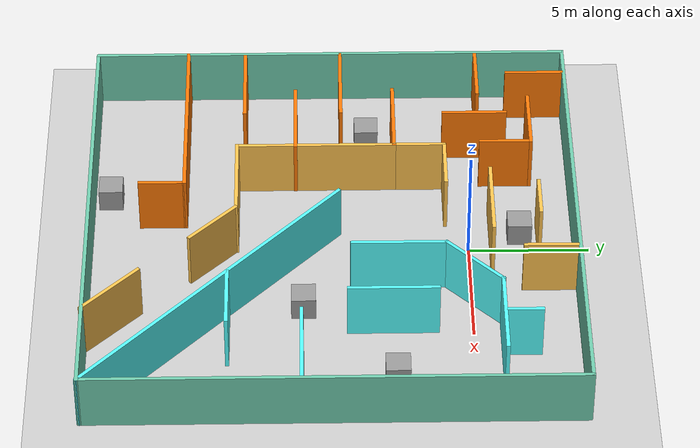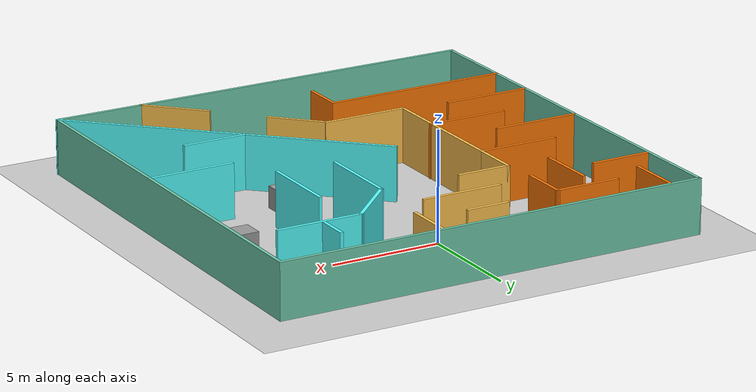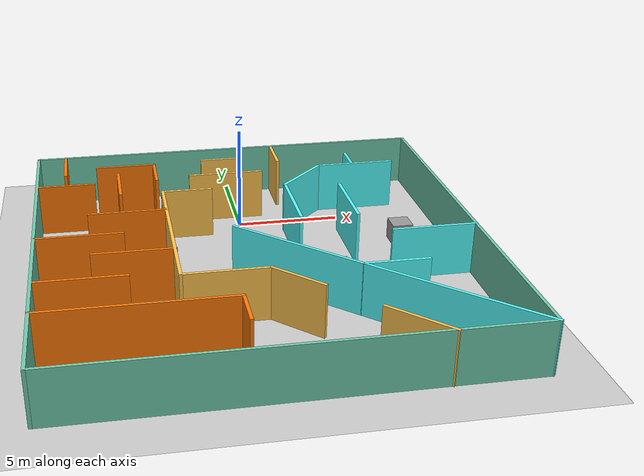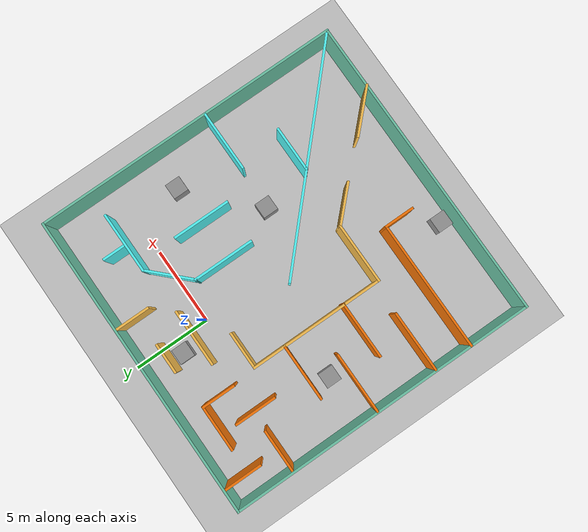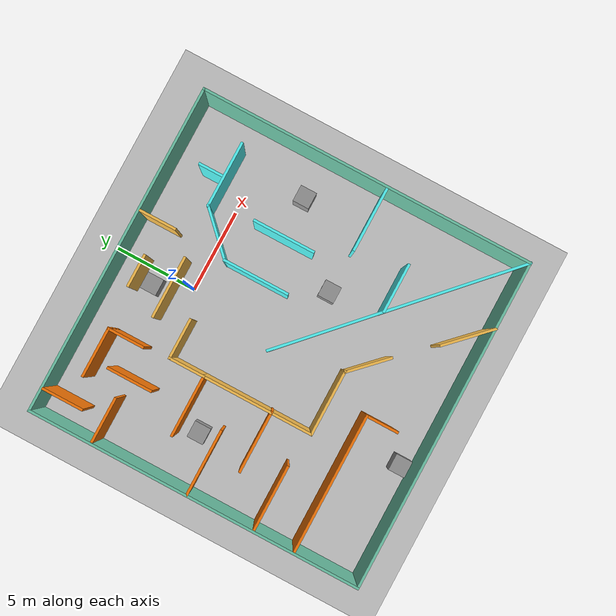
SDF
<sdf version="1.7">
 <world name="default">
  <plugin name="ros_interface_plugin" filename="librotors_gazebo_ros_interface_plugin.so"/>
  <physics type="ode">
   <ode>
    <solver>
     <type>quick</type>
     <iters>1000</iters>
     <sor>1.3</sor>
     <use_dynamic_moi_rescaling>0</use_dynamic_moi_rescaling>
    </solver>
    <constraints>
     <cfm>0</cfm>
     <erp>0.2</erp>
     <contact_max_correcting_vel>100</contact_max_correcting_vel>
     <contact_surface_layer>0.001</contact_surface_layer>
    </constraints>
   </ode>
   <max_step_size>0.01</max_step_size>
   <real_time_factor>1</real_time_factor>
   <real_time_update_rate>100</real_time_update_rate>
   <gravity>0 0 -9.8</gravity>
  </physics>
  <light name="sun" type="directional">
   <pose>0 0 10 0 -0 0</pose>
   <diffuse>0.8 0.8 0.8 1</diffuse>
   <specular>0.1 0.1 0.1 1</specular>
   <attenuation>
    <range>1000</range>
    <constant>0.9</constant>
    <linear>0.01</linear>
    <quadratic>0.001</quadratic>
   </attenuation>
   <direction>-0.5 0.5 -1</direction>
   <spot><inner_angle>0</inner_angle><outer_angle>0</outer_angle><falloff>0</falloff></spot>
  </light>
  <model name="ground_plane">
   <static>1</static>
   <link name="link">
    <collision name="collision">
     <geometry><plane><normal>0 0 1</normal><size>100 100</size></plane></geometry>
     <surface><friction><ode><mu>100</mu><mu2>50</mu2></ode></friction></surface>
    </collision>
    <visual name="visual">
     <cast_shadows>0</cast_shadows>
     <geometry><plane><normal>0 0 1</normal><size>100 100</size></plane></geometry>
     <material>
      <script><uri>file://media/materials/scripts/gazebo.material</uri><name>Gazebo/Grey</name></script>
     </material>
    </visual>
   </link>
  </model>
  <gravity>0 0 -9.8</gravity>
  <magnetic_field>6e-06 2.3e-05 -4.2e-05</magnetic_field>
  <atmosphere type="adiabatic"/>
  <scene><ambient>0.4 0.4 0.4 1</ambient><background>0.7 0.7 0.7 1</background><shadows>1</shadows></scene>
  <spherical_coordinates>
   <surface_model>EARTH_WGS84</surface_model>
   <latitude_deg>0</latitude_deg>
   <longitude_deg>0</longitude_deg>
   <elevation>0</elevation>
   <heading_deg>0</heading_deg>
  </spherical_coordinates>
  <model name="Maze_House">
   <pose>-0.08365 -5.67478 0 0 -0 0</pose>
   <link name="Wall_11">
    <collision name="Wall_11_Collision">
     <geometry><box><size>3.05 0.15 2.5</size></box></geometry>
     <pose>0 0 1.25 0 -0 0</pose>
    </collision>
    <visual name="Wall_11_Visual">
     <pose>0 0 1.25 0 -0 0</pose>
     <geometry><box><size>3.05 0.15 2.5</size></box></geometry>
     <material>
      <script><uri>file://media/materials/scripts/gazebo.material</uri><name>Gazebo/Grey</name></script>
      <ambient>0.996078 0.47451 0.0196078 1</ambient>
     </material>
    </visual>
    <pose>-5.47185 8.41758 0 0 -0 0</pose>
   </link>
   <link name="Wall_12">
    <collision name="Wall_12_Collision">
     <geometry><box><size>2.25 0.15 2.5</size></box></geometry>
     <pose>0 0 1.25 0 -0 0</pose>
    </collision>
    <visual name="Wall_12_Visual">
     <pose>0 0 1.25 0 -0 0</pose>
     <geometry><box><size>2.25 0.15 2.5</size></box></geometry>
     <material>
      <script><uri>file://media/materials/scripts/gazebo.material</uri><name>Gazebo/Grey</name></script>
      <ambient>0.996078 0.47451 0.0196078 1</ambient>
     </material>
    </visual>
    <pose>-4.03185 7.36758 0 0 0 -1.5708</pose>
   </link>
   <link name="Wall_14">
    <collision name="Wall_14_Collision">
     <geometry><box><size>2.75 0.15 2.5</size></box></geometry>
     <pose>0 0 1.25 0 -0 0</pose>
    </collision>
    <visual name="Wall_14_Visual">
     <pose>0 0 1.25 0 -0 0</pose>
     <geometry><box><size>2.75 0.15 2.5</size></box></geometry>
     <material>
      <script><uri>file://media/materials/scripts/gazebo.material</uri><name>Gazebo/Grey</name></script>
      <ambient>0.996078 0.47451 0.0196078 1</ambient>
     </material>
    </visual>
    <pose>-5.91104 6.10678 0 0 0 -1.5708</pose>
   </link>
   <link name="Wall_16">
    <collision name="Wall_16_Collision">
     <geometry><box><size>2.75 0.15 2.5</size></box></geometry>
     <pose>0 0 1.25 0 -0 0</pose>
    </collision>
    <visual name="Wall_16_Visual">
     <pose>0 0 1.25 0 -0 0</pose>
     <geometry><box><size>2.75 0.15 2.5</size></box></geometry>
     <material>
      <script><uri>file://media/materials/scripts/gazebo.material</uri><name>Gazebo/Grey</name></script>
      <ambient>0.996078 0.47451 0.0196078 1</ambient>
     </material>
    </visual>
    <pose>-8.48785 6.28957 0 0 -0 3.14159</pose>
   </link>
   <link name="Wall_18">
    <collision name="Wall_18_Collision">
     <geometry><box><size>2.5 0.15 2.5</size></box></geometry>
     <pose>0 0 1.25 0 -0 0</pose>
    </collision>
    <visual name="Wall_18_Visual">
     <pose>0 0 1.25 0 -0 0</pose>
     <geometry><box><size>2.5 0.15 2.5</size></box></geometry>
     <material>
      <script><uri>file://media/materials/scripts/gazebo.material</uri><name>Gazebo/Grey</name></script>
      <ambient>0.996078 0.47451 0.0196078 1</ambient>
     </material>
    </visual>
    <pose>-8.54446 8.78539 0 0 0 -1.5708</pose>
   </link>
   <link name="Wall_20">
    <collision name="Wall_20_Collision">
     <geometry><box><size>2.5 0.15 2.5</size></box></geometry>
     <pose>0 0 1.25 0 -0 0</pose>
    </collision>
    <visual name="Wall_20_Visual">
     <pose>0 0 1.25 0 -0 0</pose>
     <geometry><box><size>2.5 0.15 2.5</size></box></geometry>
     <material>
      <script><uri>file://media/materials/scripts/gazebo.material</uri><name>Gazebo/Grey</name></script>
      <ambient>1 0.764706 0.305882 1</ambient>
     </material>
    </visual>
    <pose>-2.69303 4.75396 0 0 -0 0</pose>
   </link>
   <link name="Wall_22">
    <collision name="Wall_22_Collision">
     <geometry><box><size>3.75 0.15 2.5</size></box></geometry>
     <pose>0 0 1.25 0 -0 0</pose>
    </collision>
    <visual name="Wall_22_Visual">
     <pose>0 0 1.25 0 -0 0</pose>
     <geometry><box><size>3.75 0.15 2.5</size></box></geometry>
     <material>
      <script><uri>file://media/materials/scripts/gazebo.material</uri><name>Gazebo/Grey</name></script>
      <ambient>1 0.764706 0.305882 1</ambient>
     </material>
    </visual>
    <pose>-0.505302 6.6178 0 0 -0 0</pose>
   </link>
   <link name="Wall_24">
    <collision name="Wall_24_Collision">
     <geometry><box><size>4 0.15 2.5</size></box></geometry>
     <pose>0 0 1.25 0 -0 0</pose>
    </collision>
    <visual name="Wall_24_Visual">
     <pose>0 0 1.25 0 -0 0</pose>
     <geometry><box><size>4 0.15 2.5</size></box></geometry>
     <material>
      <script><uri>file://media/materials/scripts/gazebo.material</uri><name>Gazebo/Grey</name></script>
      <ambient>0.333333 1 1 1</ambient>
     </material>
    </visual>
    <pose>2.20732 2.72875 0 0 0 -1.5708</pose>
   </link>
   <link name="Wall_27">
    <collision name="Wall_27_Collision">
     <geometry><box><size>2 0.15 2.5</size></box></geometry>
     <pose>0 0 1.25 0 -0 0</pose>
    </collision>
    <visual name="Wall_27_Visual">
     <pose>0 0 1.25 0 -0 0</pose>
     <geometry><box><size>2 0.15 2.5</size></box></geometry>
     <material>
      <script><uri>file://media/materials/scripts/gazebo.material</uri><name>Gazebo/Grey</name></script>
      <ambient>1 0.764706 0.305882 1</ambient>
     </material>
    </visual>
    <pose>-0.54846 8.59601 0 0 -0 0</pose>
   </link>
   <link name="Wall_29">
    <collision name="Wall_29_Collision">
     <geometry><box><size>2.25 0.15 2.5</size></box></geometry>
     <pose>0 0 1.25 0 -0 0</pose>
    </collision>
    <visual name="Wall_29_Visual">
     <pose>0 0 1.25 0 -0 0</pose>
     <geometry><box><size>2.25 0.15 2.5</size></box></geometry>
     <material>
      <script><uri>file://media/materials/scripts/gazebo.material</uri><name>Gazebo/Grey</name></script>
      <ambient>1 0.764706 0.305882 1</ambient>
     </material>
    </visual>
    <pose>2.42857 8.89362 0 0 0 -1.5708</pose>
   </link>
   <link name="Wall_31">
    <collision name="Wall_31_Collision">
     <geometry><box><size>3.25 0.15 2.5</size></box></geometry>
     <pose>0 0 1.25 0 -0 0</pose>
    </collision>
    <visual name="Wall_31_Visual">
     <pose>0 0 1.25 0 -0 0</pose>
     <geometry><box><size>3.25 0.15 2.5</size></box></geometry>
     <material>
      <script><uri>file://media/materials/scripts/gazebo.material</uri><name>Gazebo/Grey</name></script>
      <ambient>0.333333 1 1 1</ambient>
     </material>
    </visual>
    <pose>3.30334 5.74977 0 0 -0 0.785398</pose>
   </link>
   <link name="Wall_32">
    <collision name="Wall_32_Collision">
     <geometry><box><size>4 0.15 2.5</size></box></geometry>
     <pose>0 0 1.25 0 -0 0</pose>
    </collision>
    <visual name="Wall_32_Visual">
     <pose>0 0 1.25 0 -0 0</pose>
     <geometry><box><size>4 0.15 2.5</size></box></geometry>
     <material>
      <script><uri>file://media/materials/scripts/gazebo.material</uri><name>Gazebo/Grey</name></script>
      <ambient>0.333333 1 1 1</ambient>
     </material>
    </visual>
    <pose>6.32435 6.84578 0 0 -0 0</pose>
   </link>
   <link name="Wall_34">
    <collision name="Wall_34_Collision">
     <geometry><box><size>3.75 0.15 2.5</size></box></geometry>
     <pose>0 0 1.25 0 -0 0</pose>
    </collision>
    <visual name="Wall_34_Visual">
     <pose>0 0 1.25 0 -0 0</pose>
     <geometry><box><size>3.75 0.15 2.5</size></box></geometry>
     <material>
      <script><uri>file://media/materials/scripts/gazebo.material</uri><name>Gazebo/Grey</name></script>
      <ambient>0.333333 1 1 1</ambient>
     </material>
    </visual>
    <pose>4.88243 2.43137 0 0 0 -1.5708</pose>
   </link>
   <link name="Wall_36">
    <collision name="Wall_36_Collision">
     <geometry><box><size>1.5 0.15 2.5</size></box></geometry>
     <pose>0 0 1.25 0 -0 0</pose>
    </collision>
    <visual name="Wall_36_Visual">
     <pose>0 0 1.25 0 -0 0</pose>
     <geometry><box><size>1.5 0.15 2.5</size></box></geometry>
     <material>
      <script><uri>file://media/materials/scripts/gazebo.material</uri><name>Gazebo/Grey</name></script>
      <ambient>0.333333 1 1 1</ambient>
     </material>
    </visual>
    <pose>6.18981 7.64181 0 0 -0 1.5708</pose>
   </link>
   <link name="Wall_39">
    <collision name="Wall_39_Collision">
     <geometry><box><size>2.25 0.15 2.5</size></box></geometry>
     <pose>0 0 1.25 0 -0 0</pose>
    </collision>
    <visual name="Wall_39_Visual">
     <pose>0 0 1.25 0 -0 0</pose>
     <geometry><box><size>2.25 0.15 2.5</size></box></geometry>
     <material>
      <script><uri>file://media/materials/scripts/gazebo.material</uri><name>Gazebo/Grey</name></script>
      <ambient>1 0.764706 0.305882 1</ambient>
     </material>
    </visual>
    <pose>-3.86803 3.70396 0 0 0 -1.5708</pose>
   </link>
   <link name="Wall_40">
    <collision name="Wall_40_Collision">
     <geometry><box><size>3.75 0.15 2.5</size></box></geometry>
     <pose>0 0 1.25 0 -0 0</pose>
    </collision>
    <visual name="Wall_40_Visual">
     <pose>0 0 1.25 0 -0 0</pose>
     <geometry><box><size>3.75 0.15 2.5</size></box></geometry>
     <material>
      <script><uri>file://media/materials/scripts/gazebo.material</uri><name>Gazebo/Grey</name></script>
      <ambient>0.996078 0.47451 0.0196078 1</ambient>
     </material>
    </visual>
    <pose>-5.66803 2.65396 0 0 -0 3.14159</pose>
   </link>
   <link name="Wall_42">
    <collision name="Wall_42_Collision">
     <geometry><box><size>4 0.15 2.5</size></box></geometry>
     <pose>0 0 1.25 0 -0 0</pose>
    </collision>
    <visual name="Wall_42_Visual">
     <pose>0 0 1.25 0 -0 0</pose>
     <geometry><box><size>4 0.15 2.5</size></box></geometry>
     <material>
      <script><uri>file://media/materials/scripts/gazebo.material</uri><name>Gazebo/Grey</name></script>
      <ambient>0.996078 0.47451 0.0196078 1</ambient>
     </material>
    </visual>
    <pose>-7.94977 0.433564 0 0 -0 0</pose>
   </link>
   <link name="Wall_44">
    <collision name="Wall_44_Collision">
     <geometry><box><size>6.75 0.15 2.5</size></box></geometry>
     <pose>0 0 1.25 0 -0 0</pose>
    </collision>
    <visual name="Wall_44_Visual">
     <pose>0 0 1.25 0 -0 0</pose>
     <geometry><box><size>6.75 0.15 2.5</size></box></geometry>
     <material>
      <script><uri>file://media/materials/scripts/gazebo.material</uri><name>Gazebo/Grey</name></script>
      <ambient>1 0.764706 0.305882 1</ambient>
     </material>
    </visual>
    <pose>-3.86803 -0.646043 0 0 0 -1.5708</pose>
   </link>
   <link name="Wall_46">
    <collision name="Wall_46_Collision">
     <geometry><box><size>3.75 0.15 2.5</size></box></geometry>
     <pose>0 0 1.25 0 -0 0</pose>
    </collision>
    <visual name="Wall_46_Visual">
     <pose>0 0 1.25 0 -0 0</pose>
     <geometry><box><size>3.75 0.15 2.5</size></box></geometry>
     <material>
      <script><uri>file://media/materials/scripts/gazebo.material</uri><name>Gazebo/Grey</name></script>
      <ambient>0.996078 0.47451 0.0196078 1</ambient>
     </material>
    </visual>
    <pose>-5.63157 -1.49524 0 0 -0 3.14159</pose>
   </link>
   <link name="Wall_50">
    <collision name="Wall_50_Collision">
     <geometry><box><size>4 0.15 2.5</size></box></geometry>
     <pose>0 0 1.25 0 -0 0</pose>
    </collision>
    <visual name="Wall_50_Visual">
     <pose>0 0 1.25 0 -0 0</pose>
     <geometry><box><size>4 0.15 2.5</size></box></geometry>
     <material>
      <script><uri>file://media/materials/scripts/gazebo.material</uri><name>Gazebo/Grey</name></script>
      <ambient>0.996078 0.47451 0.0196078 1</ambient>
     </material>
    </visual>
    <pose>-7.9363 -3.64872 0 0 -0 0</pose>
   </link>
   <link name="Wall_52">
    <collision name="Wall_52_Collision">
     <geometry><box><size>4 0.15 2.5</size></box></geometry>
     <pose>0 0 1.25 0 -0 0</pose>
    </collision>
    <visual name="Wall_52_Visual">
     <pose>0 0 1.25 0 -0 0</pose>
     <geometry><box><size>4 0.15 2.5</size></box></geometry>
     <material>
      <script><uri>file://media/materials/scripts/gazebo.material</uri><name>Gazebo/Grey</name></script>
      <ambient>1 0.764706 0.305882 1</ambient>
     </material>
    </visual>
    <pose>-1.94303 -3.94604 0 0 -0 0</pose>
   </link>
   <link name="Wall_54">
    <collision name="Wall_54_Collision">
     <geometry><box><size>8.5 0.15 2.5</size></box></geometry>
     <pose>0 0 1.25 0 -0 0</pose>
    </collision>
    <visual name="Wall_54_Visual">
     <pose>0 0 1.25 0 -0 0</pose>
     <geometry><box><size>8.5 0.15 2.5</size></box></geometry>
     <material>
      <script><uri>file://media/materials/scripts/gazebo.material</uri><name>Gazebo/Grey</name></script>
      <ambient>0.996078 0.47451 0.0196078 1</ambient>
     </material>
    </visual>
    <pose>-5.74783 -6.10984 0 0 -0 0</pose>
   </link>
   <link name="Wall_56">
    <collision name="Wall_56_Collision">
     <geometry><box><size>2 0.15 2.5</size></box></geometry>
     <pose>0 0 1.25 0 -0 0</pose>
    </collision>
    <visual name="Wall_56_Visual">
     <pose>0 0 1.25 0 -0 0</pose>
     <geometry><box><size>2 0.15 2.5</size></box></geometry>
     <material>
      <script><uri>file://media/materials/scripts/gazebo.material</uri><name>Gazebo/Grey</name></script>
      <ambient>0.996078 0.47451 0.0196078 1</ambient>
     </material>
    </visual>
    <pose>-1.57283 -7.03484 0 0 0 -1.5708</pose>
   </link>
   <link name="Wall_58">
    <collision name="Wall_58_Collision">
     <geometry><box><size>15.1642 0.15 2.5</size></box></geometry>
     <pose>0 0 1.25 0 -0 0</pose>
    </collision>
    <visual name="Wall_58_Visual">
     <pose>0 0 1.25 0 -0 0</pose>
     <geometry><box><size>15.1642 0.15 2.5</size></box></geometry>
     <material>
      <script><uri>file://media/materials/scripts/gazebo.material</uri><name>Gazebo/Grey</name></script>
      <ambient>0.333333 1 1 1</ambient>
     </material>
    </visual>
    <pose>4.4541 -4.86797 0 0 0 -0.757292</pose>
   </link>
   <link name="Wall_6">
    <collision name="Wall_6_Collision">
     <geometry><box><size>20 0.15 2.5</size></box></geometry>
     <pose>0 0 1.25 0 -0 0</pose>
    </collision>
    <visual name="Wall_6_Visual">
     <pose>0 0 1.25 0 -0 0</pose>
     <geometry><box><size>20 0.15 2.5</size></box></geometry>
     <material>
      <script><uri>file://media/materials/scripts/gazebo.material</uri><name>Gazebo/Grey</name></script>
      <ambient>0.435294 0.796078 0.67451 1</ambient>
     </material>
    </visual>
    <pose>-0.015512 10.075 0 0 -0 0</pose>
   </link>
   <link name="Wall_61">
    <collision name="Wall_61_Collision">
     <geometry><box><size>2.75 0.15 2.5</size></box></geometry>
     <pose>0 0 1.25 0 -0 0</pose>
    </collision>
    <visual name="Wall_61_Visual">
     <pose>0 0 1.25 0 -0 0</pose>
     <geometry><box><size>2.75 0.15 2.5</size></box></geometry>
     <material>
      <script><uri>file://media/materials/scripts/gazebo.material</uri><name>Gazebo/Grey</name></script>
      <ambient>1 0.764706 0.305882 1</ambient>
     </material>
    </visual>
    <pose>0.889019 -4.89165 0 0 0 -0.785398</pose>
   </link>
   <link name="Wall_63">
    <collision name="Wall_63_Collision">
     <geometry><box><size>3.25 0.15 2.5</size></box></geometry>
     <pose>0 0 1.25 0 -0 0</pose>
    </collision>
    <visual name="Wall_63_Visual">
     <pose>0 0 1.25 0 -0 0</pose>
     <geometry><box><size>3.25 0.15 2.5</size></box></geometry>
     <material>
      <script><uri>file://media/materials/scripts/gazebo.material</uri><name>Gazebo/Grey</name></script>
      <ambient>1 0.764706 0.305882 1</ambient>
     </material>
    </visual>
    <pose>4.77894 -8.94791 0 0 0 -0.785398</pose>
   </link>
   <link name="Wall_65">
    <collision name="Wall_65_Collision">
     <geometry><box><size>3 0.15 2.5</size></box></geometry>
     <pose>0 0 1.25 0 -0 0</pose>
    </collision>
    <visual name="Wall_65_Visual">
     <pose>0 0 1.25 0 -0 0</pose>
     <geometry><box><size>3 0.15 2.5</size></box></geometry>
     <material>
      <script><uri>file://media/materials/scripts/gazebo.material</uri><name>Gazebo/Grey</name></script>
      <ambient>0.333333 1 1 1</ambient>
     </material>
    </visual>
    <pose>5.26844 -4.26723 0 0 -0 0</pose>
   </link>
   <link name="Wall_67">
    <collision name="Wall_67_Collision">
     <geometry><box><size>4 0.15 2.5</size></box></geometry>
     <pose>0 0 1.25 0 -0 0</pose>
    </collision>
    <visual name="Wall_67_Visual">
     <pose>0 0 1.25 0 -0 0</pose>
     <geometry><box><size>4 0.15 2.5</size></box></geometry>
     <material>
      <script><uri>file://media/materials/scripts/gazebo.material</uri><name>Gazebo/Grey</name></script>
      <ambient>0.333333 1 1 1</ambient>
     </material>
    </visual>
    <pose>7.96422 -1.27109 0 0 -0 3.14159</pose>
   </link>
   <link name="Wall_7">
    <collision name="Wall_7_Collision">
     <geometry><box><size>20.25 0.15 2.5</size></box></geometry>
     <pose>0 0 1.25 0 -0 0</pose>
    </collision>
    <visual name="Wall_7_Visual">
     <pose>0 0 1.25 0 -0 0</pose>
     <geometry><box><size>20.25 0.15 2.5</size></box></geometry>
     <material>
      <script><uri>file://media/materials/scripts/gazebo.material</uri><name>Gazebo/Grey</name></script>
      <ambient>0.435294 0.796078 0.67451 1</ambient>
     </material>
    </visual>
    <pose>9.90949 0.024991 0 0 0 -1.5708</pose>
   </link>
   <link name="Wall_8">
    <collision name="Wall_8_Collision">
     <geometry><box><size>20 0.15 2.5</size></box></geometry>
     <pose>0 0 1.25 0 -0 0</pose>
    </collision>
    <visual name="Wall_8_Visual">
     <pose>0 0 1.25 0 -0 0</pose>
     <geometry><box><size>20 0.15 2.5</size></box></geometry>
     <material>
      <script><uri>file://media/materials/scripts/gazebo.material</uri><name>Gazebo/Grey</name></script>
      <ambient>0.435294 0.796078 0.67451 1</ambient>
     </material>
    </visual>
    <pose>-0.015512 -10.025 0 0 -0 3.14159</pose>
   </link>
   <link name="Wall_9">
    <collision name="Wall_9_Collision">
     <geometry><box><size>20.25 0.15 2.5</size></box></geometry>
     <pose>0 0 1.25 0 -0 0</pose>
    </collision>
    <visual name="Wall_9_Visual">
     <pose>0 0 1.25 0 -0 0</pose>
     <geometry><box><size>20.25 0.15 2.5</size></box></geometry>
     <material>
      <script><uri>file://media/materials/scripts/gazebo.material</uri><name>Gazebo/Grey</name></script>
      <ambient>0.435294 0.796078 0.67451 1</ambient>
     </material>
    </visual>
    <pose>-9.94051 0.024991 0 0 -0 1.5708</pose>
   </link>
   <static>1</static>
  </model>
  <model name="unit_box_0">
   <pose>7.51547 -3.11712 0.5 0 -0 -0.000532</pose>
   <link name="link">
    <inertial>
     <mass>1</mass>
     <inertia>
      <ixx>0.166667</ixx>
      <ixy>0</ixy>
      <ixz>0</ixz>
      <iyy>0.166667</iyy>
      <iyz>0</iyz>
      <izz>0.166667</izz>
     </inertia>
    </inertial>
    <collision name="collision"><geometry><box><size>1 1 1</size></box></geometry></collision>
    <visual name="visual">
     <geometry><box><size>1 1 1</size></box></geometry>
     <material>
      <script><name>Gazebo/Grey</name><uri>file://media/materials/scripts/gazebo.material</uri></script>
     </material>
    </visual>
   </link>
  </model>
  <model name="unit_box_0_clone">
   <pose>-0.860078 2.13263 0.5 0 -0 0</pose>
   <link name="link">
    <inertial>
     <mass>1</mass>
     <inertia>
      <ixx>0.166667</ixx>
      <ixy>0</ixy>
      <ixz>0</ixz>
      <iyy>0.166667</iyy>
      <iyz>0</iyz>
      <izz>0.166667</izz>
     </inertia>
    </inertial>
    <collision name="collision"><geometry><box><size>1 1 1</size></box></geometry></collision>
    <visual name="visual">
     <geometry><box><size>1 1 1</size></box></geometry>
     <material>
      <script><name>Gazebo/Grey</name><uri>file://media/materials/scripts/gazebo.material</uri></script>
     </material>
    </visual>
   </link>
  </model>
  <model name="unit_box_0_clone_0">
   <pose>-6.9486 -4.16312 0.5 0 -0 0</pose>
   <link name="link">
    <inertial>
     <mass>1</mass>
     <inertia>
      <ixx>0.166667</ixx>
      <ixy>0</ixy>
      <ixz>0</ixz>
      <iyy>0.166667</iyy>
      <iyz>0</iyz>
      <izz>0.166667</izz>
     </inertia>
    </inertial>
    <collision name="collision"><geometry><box><size>1 1 1</size></box></geometry></collision>
    <visual name="visual">
     <geometry><box><size>1 1 1</size></box></geometry>
     <material>
      <script><name>Gazebo/Grey</name><uri>file://media/materials/scripts/gazebo.material</uri></script>
     </material>
    </visual>
   </link>
  </model>
  <model name="unit_box_0_clone_1">
   <pose>-3.24754 -14.9576 0.5 0 -0 0</pose>
   <link name="link">
    <inertial>
     <mass>1</mass>
     <inertia>
      <ixx>0.166667</ixx>
      <ixy>0</ixy>
      <ixz>0</ixz>
      <iyy>0.166667</iyy>
      <iyz>0</iyz>
      <izz>0.166667</izz>
     </inertia>
    </inertial>
    <collision name="collision"><geometry><box><size>1 1 1</size></box></geometry></collision>
    <visual name="visual">
     <geometry><box><size>1 1 1</size></box></geometry>
     <material>
      <script><name>Gazebo/Grey</name><uri>file://media/materials/scripts/gazebo.material</uri></script>
     </material>
    </visual>
   </link>
  </model>
  <model name="unit_box_0_clone_2">
   <pose>3.47911 -6.86951 0.5 0 -0 0</pose>
   <link name="link">
    <inertial>
     <mass>1</mass>
     <inertia>
      <ixx>0.166667</ixx>
      <ixy>0</ixy>
      <ixz>0</ixz>
      <iyy>0.166667</iyy>
      <iyz>0</iyz>
      <izz>0.166667</izz>
     </inertia>
    </inertial>
    <collision name="collision"><geometry><box><size>1 1 1</size></box></geometry></collision>
    <visual name="visual">
     <geometry><box><size>1 1 1</size></box></geometry>
     <material>
      <script><name>Gazebo/Grey</name><uri>file://media/materials/scripts/gazebo.material</uri></script>
     </material>
    </visual>
   </link>
  </model>
 </world>
</sdf>
